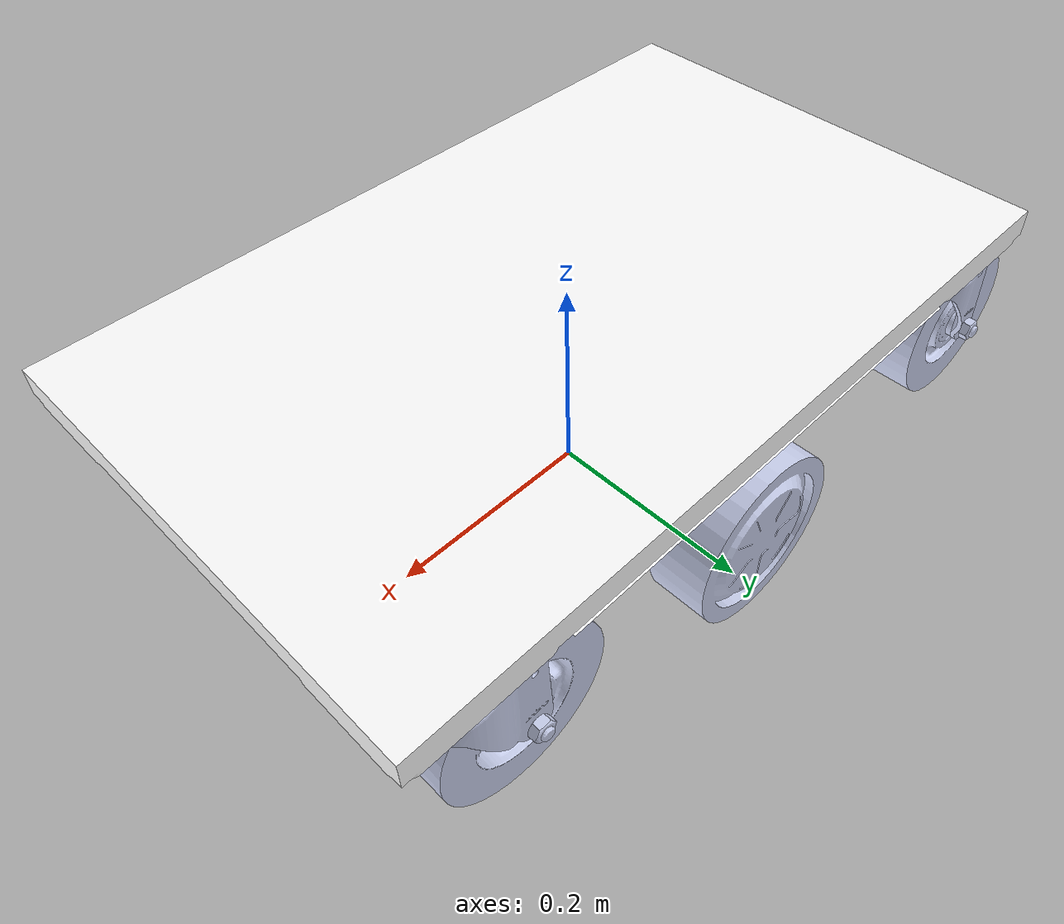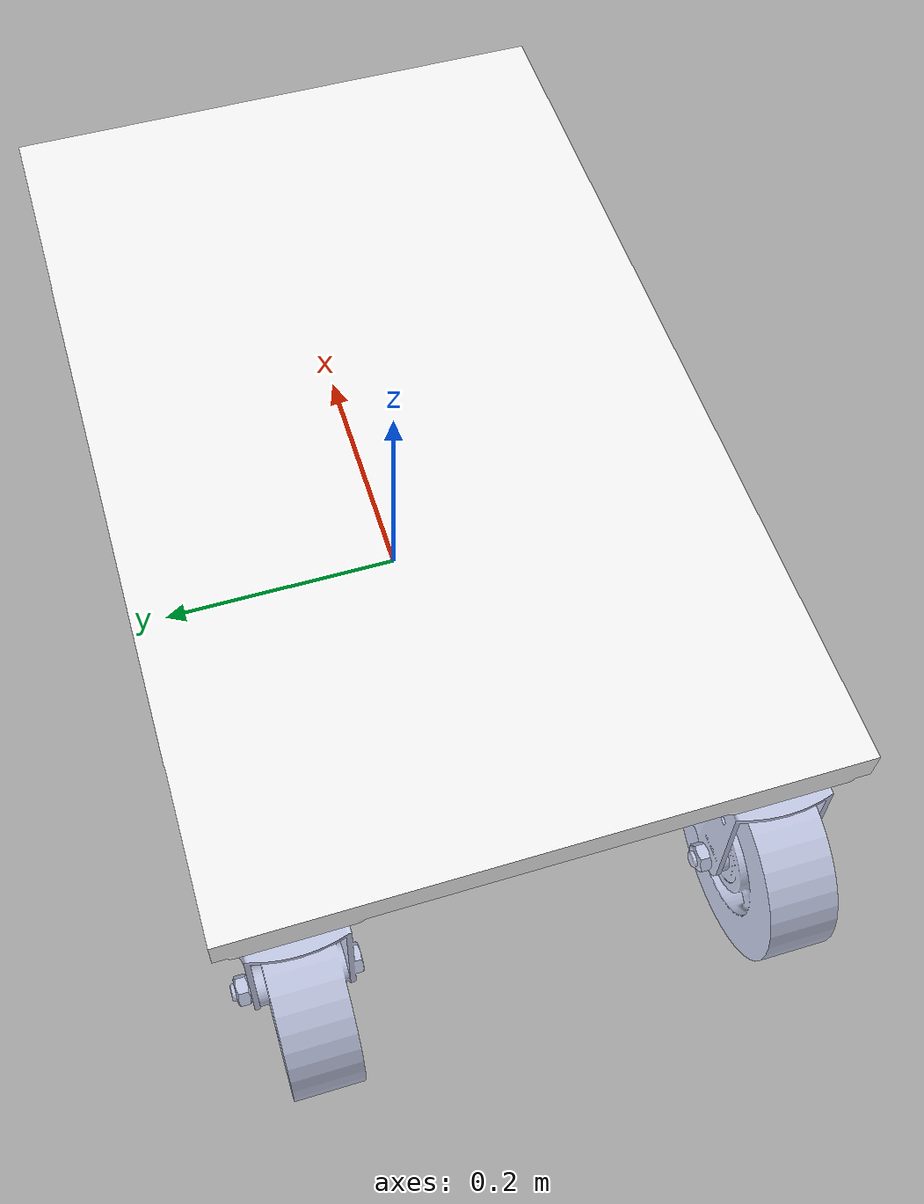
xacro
<?xml version="1.0"?>

<robot xmlns:xacro="http://www.ros.org/wiki/xacro">

    <link name="base_footprint"> </link>
    <joint name="base_joint" type="fixed">
        <parent link="base_footprint" />
        <child link="base_link" />
        <origin xyz="0 0 0.21" rpy="0 0 0" />
    </joint>

    <!-- ============= BASE LINK ============= -->
    <link name="base_link">

        <inertial>
            <origin xyz="6.1085E-11 7.0637E-11 -0.058359" rpy="0 0 0" />
            <mass value="11.93" />
            <inertia ixx="0.24655" ixy="1.0146E-10" ixz="-7.2198E-14" iyy="0.44294" iyz="1.8415E-13"
                izz="0.61972" />
        </inertial>

        <visual>
            <origin xyz="0 0 0" rpy="0 0 0" />
            <geometry>
                <mesh filename="package://factomove_description/meshes/base_link.STL" />
            </geometry>
            <material name="">
                <color rgba="1 1 1 1" />
            </material>
        </visual>

        <collision>
            <origin xyz="0 0 0" rpy="0 0 0" />
            <geometry>
                <mesh filename="package://factomove_description/meshes/base_link.STL" />
            </geometry>
        </collision>

    </link>

    <!-- ============= LEFT WHEEL ============= -->
    <link name="left_wheel">

        <inertial>
            <origin xyz="-6.3781E-06 -0.027802 1.0717E-06" rpy="0 0 0" />
            <mass value="1.0785" />
            <inertia ixx="0.0019839" ixy="-3.8726E-07" ixz="-5.7089E-09" iyy="0.0033904"
                iyz="6.5067E-08" izz="0.0019839" />
        </inertial>

        <visual>
            <origin xyz="0 0 0" rpy="0 0 0" />
            <geometry>
                <mesh filename="package://factomove_description/meshes/mid_left_wheel_link.STL" />
            </geometry>
            <material name="">
                <color rgba="0.79216 0.81961 0.93333 1" />
            </material>
        </visual>

        <collision>
            <origin xyz="0 0 0" rpy="0 0 0" />
            <geometry>
                <mesh filename="package://factomove_description/meshes/mid_left_wheel_link.STL" />
            </geometry>
        </collision>

    </link>

    <joint name="left_wheel_joint" type="continuous">

        <origin xyz="0 0.224 -0.141" rpy="0 0 0" />
        <parent link="base_link" />
        <child link="left_wheel" />
        <axis xyz="0 1 0" />
        <limit effort="50000" velocity="10" />
        <dynamics damping="1.0" friction="1.0" />

    </joint>

    <!-- ============= RIGHT WHEEL ============= -->
    <link name="right_wheel">

        <inertial>
            <origin xyz="3.043E-06 0.027802 -5.7069E-06" rpy="0 0 0" />
            <mass value="1.0785" />
            <inertia ixx="0.0019839" ixy="-1.8476E-07" ixz="-1.4505E-08" iyy="0.0033904"
                iyz="3.465E-07" izz="0.0019839" />
        </inertial>

        <visual>
            <origin xyz="0 0 0" rpy="0 0 0" />
            <geometry>
                <mesh filename="package://factomove_description/meshes/mid_right_wheel_link.STL" />
            </geometry>
            <material name="">
                <color rgba="0.79216 0.81961 0.93333 1" />
            </material>
        </visual>

        <collision>
            <origin xyz="0 0 0" rpy="0 0 0" />
            <geometry>
                <mesh filename="package://factomove_description/meshes/mid_right_wheel_link.STL" />
            </geometry>
        </collision>

    </link>

    <joint name="right_wheel_joint" type="continuous">

        <origin xyz="0 -0.224 -0.141" rpy="0 0 0" />
        <parent link="base_link" />
        <child link="right_wheel" />
        <axis xyz="0 1 0" />
        <limit effort="50000" velocity="10" />
        <dynamics damping="1.0" friction="1.0" />

    </joint>

    <!-- ============= FRONT LEFT KEEPER ============= -->
    <link name="front_left_keeper_link">

        <inertial>
            <origin xyz="-0.0266276705620659 0.000666352830324346 -0.0393449495275665" rpy="0 0 0" />
            <mass value="0.102809337693291" />
            <inertia
                ixx="0.000195021798600733"
                ixy="-1.2184873072082E-07"
                ixz="-4.0809835332173E-05"
                iyy="0.000167393233669256"
                iyz="9.24624427261228E-08"
                izz="0.000195015527031851" />
        </inertial>

        <visual>
            <origin xyz="0 0 0" rpy="0 0 0" />
            <geometry>
                <mesh filename="package://factomove_description/meshes/front_left_keeper_link.STL" />
            </geometry>
            <material name="">
                <color rgba="0.792156862745098 0.819607843137255 0.933333333333333 1" />
            </material>
        </visual>

        <collision>
            <origin xyz="0 0 0" rpy="0 0 0" />
            <geometry>
                <mesh filename="package://factomove_description/meshes/front_left_keeper_link.STL" />
            </geometry>
        </collision>

    </link>

    <joint name="front_left_keeper_joint" type="continuous">

        <origin xyz="0.2925 0.17 -0.040635" rpy="0 0 0" />
        <parent link="base_link" />
        <child link="front_left_keeper_link" />
        <axis xyz="0 0 -1" />
        <limit effort="10" velocity="10" />
        <dynamics damping="0.1" friction="0.1" />

    </joint>

    <!-- ============= FRONT LEFT WHEEL ============= -->
    <link name="front_left_wheel_link">

        <inertial>
            <origin xyz="-3.8734E-09 1.1658E-09 3.0966E-09" rpy="0 0 0" />
            <mass value="0.67052" />
            <inertia ixx="0.0015386" ixy="4.1231E-06" ixz="-5.9599E-12" iyy="0.0028064"
                iyz="2.5984E-12" izz="0.0015386" />
        </inertial>

        <visual>
            <origin xyz="0 0 0" rpy="0 0 0" />
            <geometry>
                <mesh filename="package://factomove_description/meshes/front_left_wheel_link.STL" />
            </geometry>
            <material name="">
                <color rgba="0.79216 0.81961 0.93333 1" />
            </material>
        </visual>

        <collision>
            <origin xyz="0 0 0" rpy="0 0 0" />
            <geometry>
                <mesh filename="package://factomove_description/meshes/front_left_wheel_link.STL" />
            </geometry>
        </collision>

    </link>

    <joint name="front_left_wheel_joint" type="continuous">

        <origin xyz="-0.053 0.00017237 -0.10037" rpy="0 0 0" />
        <parent link="front_left_keeper_link" />
        <child link="front_left_wheel_link" />
        <axis xyz="-0.0032522 -0.99999 0" />
        <limit effort="10" velocity="10" />
        <dynamics damping="0.1" friction="0.1" />

    </joint>

    <!-- ============= FRONT RIGHT KEEPER ============= -->
    <link name="front_right_keeper_link">

        <inertial>
            <origin xyz="-0.026628 0.00066635 -0.039345" rpy="0 0 0" />
            <mass value="0.10281" />
            <inertia ixx="0.00019502" ixy="-1.2185E-07" ixz="-4.081E-05" iyy="0.00016739"
                iyz="9.2462E-08" izz="0.00019502" />
        </inertial>

        <visual>
            <origin xyz="0 0 0" rpy="0 0 0" />
            <geometry>
                <mesh filename="package://factomove_description/meshes/front_right_keeper_link.STL" />
            </geometry>
            <material name="">
                <color rgba="0.79216 0.81961 0.93333 1" />
            </material>
        </visual>

        <collision>
            <origin xyz="0 0 0" rpy="0 0 0" />
            <geometry>
                <mesh filename="package://factomove_description/meshes/front_right_keeper_link.STL" />
            </geometry>
        </collision>

    </link>

    <joint name="front_right_keeper_joint" type="continuous">

        <origin xyz="0.2925 -0.17 -0.040635" rpy="0 0 0" />
        <parent link="base_link" />
        <child link="front_right_keeper_link" />
        <axis xyz="0 0 -1" />
        <limit effort="10" velocity="10" />
        <dynamics damping="0.1" friction="0.1" />

    </joint>

    <!-- ============= FRONT RIGHT WHEEL ============= -->
    <link name="front_right_wheel_link">

        <inertial>
            <origin xyz="-3.8734E-09 1.1658E-09 3.0966E-09" rpy="0 0 0" />
            <mass value="0.67052" />
            <inertia ixx="0.0015386" ixy="4.1231E-06" ixz="-5.9599E-12" iyy="0.0028064"
                iyz="2.5984E-12" izz="0.0015386" />
        </inertial>

        <visual>
            <origin xyz="0 0 0" rpy="0 0 0" />
            <geometry>
                <mesh filename="package://factomove_description/meshes/front_right_wheel_link.STL" />
            </geometry>
            <material name="">
                <color rgba="0.79216 0.81961 0.93333 1" />
            </material>
        </visual>

        <collision>
            <origin xyz="0 0 0" rpy="0 0 0" />
            <geometry>
                <mesh filename="package://factomove_description/meshes/front_right_wheel_link.STL" />
            </geometry>
        </collision>

    </link>

    <joint name="front_right_wheel_joint" type="continuous">

        <origin xyz="-0.053 0.00017237 -0.10037" rpy="0 0 0" />
        <parent link="front_right_keeper_link" />
        <child link="front_right_wheel_link" />
        <axis xyz="-0.0032522 -0.99999 0" />
        <limit effort="10" velocity="10" />
        <dynamics damping="0.1" friction="0.1" />
    </joint>

    <!-- ============= BACK LEFT KEEPER ============= -->
    <link name="back_left_keeper_link">

        <inertial>
            <origin xyz="-0.026628 0.00066635 -0.039345" rpy="0 0 0" />
            <mass value="0.10281" />
            <inertia ixx="0.00019502" ixy="-1.2185E-07" ixz="-4.081E-05" iyy="0.00016739"
                iyz="9.2462E-08" izz="0.00019502" />
        </inertial>

        <visual>
            <origin xyz="0 0 0" rpy="0 0 0" />
            <geometry>
                <mesh filename="package://factomove_description/meshes/back_left_keeper_link.STL" />
            </geometry>
            <material name="">
                <color rgba="0.79216 0.81961 0.93333 1" />
            </material>
        </visual>

        <collision>
            <origin xyz="0 0 0" rpy="0 0 0" />
            <geometry>
                <mesh filename="package://factomove_description/meshes/back_left_keeper_link.STL" />
            </geometry>
        </collision>

    </link>

    <joint name="back_left_keeper_joint" type="continuous">

        <origin xyz="-0.2925 0.17 -0.040635" rpy="0 0 0" />
        <parent link="base_link" />
        <child link="back_left_keeper_link" />
        <axis xyz="0 0 -1" />
        <limit effort="10" velocity="10" />
        <dynamics damping="0.1" friction="0.1" />

    </joint>

    <!-- ============= BACK LEFT WHEEL ============= -->
    <link name="back_left_wheel_link">

        <inertial>
            <origin xyz="-3.8734E-09 1.1658E-09 3.0966E-09" rpy="0 0 0" />
            <mass value="0.67052" />
            <inertia ixx="0.0015386" ixy="4.1231E-06" ixz="-5.9599E-12" iyy="0.0028064"
                iyz="2.5984E-12" izz="0.0015386" />
        </inertial>

        <visual>
            <origin xyz="0 0 0" rpy="0 0 0" />
            <geometry>
                <mesh filename="package://factomove_description/meshes/back_left_wheel_link.STL" />
            </geometry>
            <material name="">
                <color rgba="0.79216 0.81961 0.93333 1" />
            </material>
        </visual>

        <collision>
            <origin xyz="0 0 0" rpy="0 0 0" />
            <geometry>
                <mesh filename="package://factomove_description/meshes/back_left_wheel_link.STL" />
            </geometry>
        </collision>
    </link>

    <joint name="back_left_wheel_joint" type="continuous">

        <origin xyz="-0.053 0.00017237 -0.10037" rpy="0 0 0" />
        <parent link="back_left_keeper_link" />
        <child link="back_left_wheel_link" />
        <axis xyz="-0.0032522 -0.99999 0" />
        <limit effort="10" velocity="10" />
        <dynamics damping="0.1" friction="0.1" />

    </joint>

    <!-- ============= BACK RIGHT KEEPER ============= -->
    <link name="back_right_keeper_link">

        <inertial>
            <origin xyz="-0.026628 0.00066635 -0.039345" rpy="0 0 0" />
            <mass value="0.10281" />
            <inertia ixx="0.00019502" ixy="-1.2185E-07" ixz="-4.081E-05" iyy="0.00016739"
                iyz="9.2462E-08" izz="0.00019502" />
        </inertial>

        <visual>
            <origin xyz="0 0 0" rpy="0 0 0" />
            <geometry>
                <mesh filename="package://factomove_description/meshes/back_right_keeper_link.STL" />
            </geometry>
            <material name="">
                <color rgba="0.79216 0.81961 0.93333 1" />
            </material>
        </visual>

        <collision>
            <origin xyz="0 0 0" rpy="0 0 0" />
            <geometry>
                <mesh filename="package://factomove_description/meshes/back_right_keeper_link.STL" />
            </geometry>
        </collision>

    </link>

    <joint name="back_right_keeper_joint" type="continuous">

        <origin xyz="-0.2925 -0.17 -0.040635" rpy="0 0 0" />
        <parent link="base_link" />
        <child link="back_right_keeper_link" />
        <axis xyz="0 0 -1" />
        <limit effort="10" velocity="10" />
        <dynamics damping="0.1" friction="0.1" />

    </joint>

    <!-- ============= BACK RIGHT WHEEL ============= -->
    <link name="back_right_wheel_link">

        <inertial>
            <origin xyz="-3.8734E-09 1.1658E-09 3.0966E-09" rpy="0 0 0" />
            <mass value="0.67052" />
            <inertia ixx="0.0015386" ixy="4.1231E-06" ixz="-5.9599E-12" iyy="0.0028064"
                iyz="2.5984E-12" izz="0.0015386" />
        </inertial>

        <visual>
            <origin xyz="0 0 0" rpy="0 0 0" />
            <geometry>
                <mesh filename="package://factomove_description/meshes/back_right_wheel_link.STL" />
            </geometry>
            <material name="">
                <color rgba="0.79216 0.81961 0.93333 1" />
            </material>
        </visual>

        <collision>
            <origin xyz="0 0 0" rpy="0 0 0" />
            <geometry>
                <mesh filename="package://factomove_description/meshes/back_right_wheel_link.STL" />
            </geometry>
        </collision>

    </link>

    <joint name="back_right_wheel_joint" type="continuous">

        <origin xyz="-0.053 0.00017237 -0.10037" rpy="0 0 0" />
        <parent link="back_right_keeper_link" />
        <child link="back_right_wheel_link" />
        <axis xyz="-0.0032522 -0.99999 0" />
        <limit effort="10" velocity="10" />
        <dynamics damping="0.1" friction="0.1" />

    </joint>

</robot>
